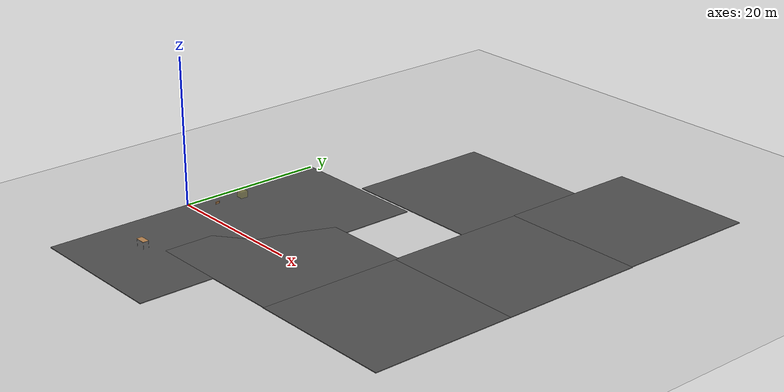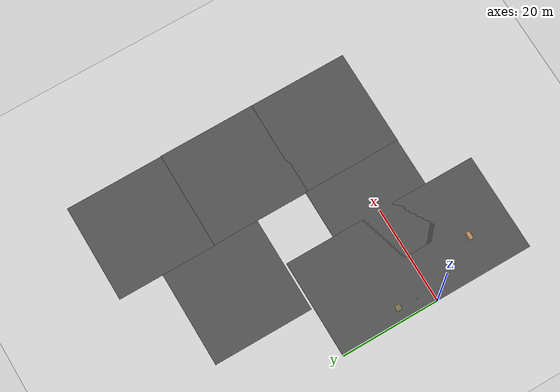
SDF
<sdf version="1.7">
 <world name="default">
  <model name="ground_plane">
   <static>1</static>
   <link name="link">
    <collision name="collision">
     <geometry><plane><normal>0 0 1</normal><size>100 100</size></plane></geometry>
     <surface><friction><ode><mu>100</mu><mu2>50</mu2></ode></friction></surface>
    </collision>
    <visual name="visual">
     <cast_shadows>0</cast_shadows>
     <geometry><plane><normal>0 0 1</normal><size>100 100</size></plane></geometry>
     <material>
      <script><uri>file://media/materials/scripts/gazebo.material</uri><name>Gazebo/Grey</name></script>
     </material>
    </visual>
   </link>
  </model>
  <model name="asphalt_plane">
   <static>1</static>
   <link name="link">
    <collision name="collision"><geometry><box><size>20 20 0.1</size></box></geometry></collision>
    <visual name="visual">
     <cast_shadows>0</cast_shadows>
     <geometry><box><size>20 20 0.1</size></box></geometry>
     <material>
      <script>
       <uri>model://asphalt_plane/materials/scripts</uri>
       <uri>model://asphalt_plane/materials/textures</uri>
       <name>vrc/asphalt</name>
      </script>
     </material>
    </visual>
   </link>
   <pose>10 10 0 0 -0 0</pose>
  </model>
  <model name="asphalt_plane_clone_0">
   <static>1</static>
   <link name="link">
    <collision name="collision"><geometry><box><size>20 20 0.1</size></box></geometry></collision>
    <visual name="visual">
     <cast_shadows>0</cast_shadows>
     <geometry><box><size>20 20 0.1</size></box></geometry>
     <material>
      <script>
       <uri>model://asphalt_plane/materials/scripts</uri>
       <uri>model://asphalt_plane/materials/textures</uri>
       <name>vrc/asphalt</name>
      </script>
     </material>
    </visual>
   </link>
   <pose>19.9376 0.040313 0 0 -0 0</pose>
  </model>
  <model name="asphalt_plane_clone_0_clone">
   <static>1</static>
   <link name="link">
    <collision name="collision"><geometry><box><size>20 20 0.1</size></box></geometry></collision>
    <visual name="visual">
     <cast_shadows>0</cast_shadows>
     <geometry><box><size>20 20 0.1</size></box></geometry>
     <material>
      <script>
       <uri>model://asphalt_plane/materials/scripts</uri>
       <uri>model://asphalt_plane/materials/textures</uri>
       <name>vrc/asphalt</name>
      </script>
     </material>
    </visual>
   </link>
   <pose>39.77 -0.016026 0 0 -0 0</pose>
  </model>
  <model name="asphalt_plane_clone_0_clone_0">
   <static>1</static>
   <link name="link">
    <collision name="collision"><geometry><box><size>20 20 0.1</size></box></geometry></collision>
    <visual name="visual">
     <cast_shadows>0</cast_shadows>
     <geometry><box><size>20 20 0.1</size></box></geometry>
     <material>
      <script>
       <uri>model://asphalt_plane/materials/scripts</uri>
       <uri>model://asphalt_plane/materials/textures</uri>
       <name>vrc/asphalt</name>
      </script>
     </material>
    </visual>
   </link>
   <pose>39.7819 19.5413 0 0 -0 0</pose>
  </model>
  <model name="asphalt_plane_clone_0_clone_1">
   <static>1</static>
   <link name="link">
    <collision name="collision"><geometry><box><size>20 20 0.1</size></box></geometry></collision>
    <visual name="visual">
     <cast_shadows>0</cast_shadows>
     <geometry><box><size>20 20 0.1</size></box></geometry>
     <material>
      <script>
       <uri>model://asphalt_plane/materials/scripts</uri>
       <uri>model://asphalt_plane/materials/textures</uri>
       <name>vrc/asphalt</name>
      </script>
     </material>
    </visual>
   </link>
   <pose>39.6832 39.3938 0 0 -0 0</pose>
  </model>
  <model name="asphalt_plane_clone_0_clone_2">
   <static>1</static>
   <link name="link">
    <collision name="collision"><geometry><box><size>20 20 0.1</size></box></geometry></collision>
    <visual name="visual">
     <cast_shadows>0</cast_shadows>
     <geometry><box><size>20 20 0.1</size></box></geometry>
     <material>
      <script>
       <uri>model://asphalt_plane/materials/scripts</uri>
       <uri>model://asphalt_plane/materials/textures</uri>
       <name>vrc/asphalt</name>
      </script>
     </material>
    </visual>
   </link>
   <pose>20.3411 30.4402 0 0 -0 0</pose>
  </model>
  <model name="asphalt_plane_clone_clone_0">
   <static>1</static>
   <link name="link">
    <collision name="collision"><geometry><box><size>20 20 0.1</size></box></geometry></collision>
    <visual name="visual">
     <cast_shadows>0</cast_shadows>
     <geometry><box><size>20 20 0.1</size></box></geometry>
     <material>
      <script>
       <uri>model://asphalt_plane/materials/scripts</uri>
       <uri>model://asphalt_plane/materials/textures</uri>
       <name>vrc/asphalt</name>
      </script>
     </material>
    </visual>
   </link>
   <pose>10 -10 0 0 -0 0</pose>
  </model>
  <model name="marble_1_5cm">
   <link name="link">
    <pose>0 0 0.0075 0 -0 0</pose>
    <inertial>
     <mass>0.0062</mass>
     <inertia>
      <ixx>1.395e-07</ixx>
      <ixy>0</ixy>
      <ixz>0</ixz>
      <iyy>1.395e-07</iyy>
      <iyz>0</iyz>
      <izz>1.395e-07</izz>
     </inertia>
    </inertial>
    <collision name="collision">
     <geometry><sphere><radius>0.0075</radius></sphere></geometry>
     <surface>
      <contact>
       <poissons_ratio>0.22</poissons_ratio>
       <elastic_modulus>5.1e+10</elastic_modulus>
       <ode><kp>100000</kp><kd>100</kd><max_vel>100</max_vel><min_depth>0.001</min_depth></ode>
      </contact>
      <friction>
       <torsional>
        <coefficient>1</coefficient>
        <use_patch_radius>0</use_patch_radius>
        <surface_radius>0.01</surface_radius>
       </torsional>
      </friction>
     </surface>
    </collision>
    <visual name="visual">
     <geometry><sphere><radius>0.0075</radius></sphere></geometry>
     <material>
      <script><uri>file://media/materials/scripts/gazebo.material</uri><name>Gazebo/Blue</name></script>
     </material>
    </visual>
    <velocity_decay><linear>0</linear><angular>0.005</angular></velocity_decay>
   </link>
   <pose>6.07274 -9.18428 0 0 -0 0</pose>
  </model>
  <model name="RegionEventBox">
   <static>1</static>
   <pose>2.43258 6.8815 0 0 -0 0</pose>
   <link name="link">
    <visual name="visual">
     <transparency>0.75</transparency>
     <geometry><box><size>1 1 1.75</size></box></geometry>
     <material>
      <script><uri>file://media/materials/scripts/gazebo.material</uri><name>Gazebo/Yellow</name></script>
     </material>
    </visual>
   </link>
   <plugin name="region_event_box" filename="libRegionEventBoxPlugin.so">
    <event><name>model_in_region_event_box</name><type>inclusion</type><active>1</active></event>
   </plugin>
  </model>
  <model name="table">
   <static>1</static>
   <link name="link">
    <collision name="surface">
     <pose>0 0 1 0 -0 0</pose>
     <geometry><box><size>1.5 0.8 0.03</size></box></geometry>
     <surface><friction><ode><mu>0.6</mu><mu2>0.6</mu2></ode></friction></surface>
    </collision>
    <visual name="visual1">
     <pose>0 0 1 0 -0 0</pose>
     <geometry><box><size>1.5 0.8 0.03</size></box></geometry>
     <material>
      <script><uri>file://media/materials/scripts/gazebo.material</uri><name>Gazebo/Wood</name></script>
     </material>
    </visual>
    <collision name="front_left_leg">
     <pose>0.68 0.38 0.5 0 -0 0</pose>
     <geometry><cylinder><radius>0.02</radius><length>1</length></cylinder></geometry>
    </collision>
    <visual name="front_left_leg">
     <pose>0.68 0.38 0.5 0 -0 0</pose>
     <geometry><cylinder><radius>0.02</radius><length>1</length></cylinder></geometry>
     <material>
      <script><uri>file://media/materials/scripts/gazebo.material</uri><name>Gazebo/Grey</name></script>
     </material>
    </visual>
    <collision name="front_right_leg">
     <pose>0.68 -0.38 0.5 0 -0 0</pose>
     <geometry><cylinder><radius>0.02</radius><length>1</length></cylinder></geometry>
    </collision>
    <visual name="front_right_leg">
     <pose>0.68 -0.38 0.5 0 -0 0</pose>
     <geometry><cylinder><radius>0.02</radius><length>1</length></cylinder></geometry>
     <material>
      <script><uri>file://media/materials/scripts/gazebo.material</uri><name>Gazebo/Grey</name></script>
     </material>
    </visual>
    <collision name="back_right_leg">
     <pose>-0.68 -0.38 0.5 0 -0 0</pose>
     <geometry><cylinder><radius>0.02</radius><length>1</length></cylinder></geometry>
    </collision>
    <visual name="back_right_leg">
     <pose>-0.68 -0.38 0.5 0 -0 0</pose>
     <geometry><cylinder><radius>0.02</radius><length>1</length></cylinder></geometry>
     <material>
      <script><uri>file://media/materials/scripts/gazebo.material</uri><name>Gazebo/Grey</name></script>
     </material>
    </visual>
    <collision name="back_left_leg">
     <pose>-0.68 0.38 0.5 0 -0 0</pose>
     <geometry><cylinder><radius>0.02</radius><length>1</length></cylinder></geometry>
    </collision>
    <visual name="back_left_leg">
     <pose>-0.68 0.38 0.5 0 -0 0</pose>
     <geometry><cylinder><radius>0.02</radius><length>1</length></cylinder></geometry>
     <material>
      <script><uri>file://media/materials/scripts/gazebo.material</uri><name>Gazebo/Grey</name></script>
     </material>
    </visual>
   </link>
   <pose>7.23213 -11.3963 0 0 -0 0</pose>
  </model>
  <model name="wooden_case_metal_peg">
   <frame name="wooden_case::__model__" attached_to="wooden_case::base">
    <pose relative_to="__model__">0 0 0 0 -0 0</pose>
   </frame>
   <link name="wooden_case::base">
    <pose relative_to="wooden_case::__model__">0 0 0.024 0 -0 0</pose>
    <inertial>
     <pose>-0.022184 0 0.171592 0 -0 0</pose>
     <mass>3.96264</mass>
     <inertia>
      <ixx>0.213536</ixx>
      <ixy>0</ixy>
      <ixz>0.000779377</ixz>
      <iyy>0.0708943</iyy>
      <iyz>0</iyz>
      <izz>0.154604</izz>
     </inertia>
    </inertial>
    <collision name="collision_back">
     <pose>-0.053975 0 0.1778 0 -0 0</pose>
     <geometry><box><size>0.01905 0.5461 0.3175</size></box></geometry>
     <surface>
      <contact>
       <poissons_ratio>0.347</poissons_ratio>
       <elastic_modulus>8.8e+09</elastic_modulus>
       <ode><kp>100000</kp><kd>100</kd><max_vel>100</max_vel><min_depth>0.001</min_depth></ode>
      </contact>
      <friction>
       <torsional>
        <coefficient>1</coefficient>
        <use_patch_radius>0</use_patch_radius>
        <surface_radius>0.01</surface_radius>
       </torsional>
      </friction>
     </surface>
    </collision>
    <visual name="visual_back">
     <pose>-0.053975 0 0.1778 0 -0 0</pose>
     <geometry><box><size>0.01905 0.5461 0.3175</size></box></geometry>
     <material>
      <script><uri>file://media/materials/scripts/gazebo.material</uri><name>Gazebo/Wood</name></script>
     </material>
    </visual>
    <collision name="collision_bottom">
     <pose>0 0 0.009525 0 -0 0</pose>
     <geometry><box><size>0.127 0.5842 0.01905</size></box></geometry>
     <surface>
      <contact>
       <poissons_ratio>0.347</poissons_ratio>
       <elastic_modulus>8.8e+09</elastic_modulus>
       <ode><kp>100000</kp><kd>100</kd><max_vel>100</max_vel><min_depth>0.001</min_depth></ode>
      </contact>
      <friction>
       <torsional>
        <coefficient>1</coefficient>
        <use_patch_radius>0</use_patch_radius>
        <surface_radius>0.01</surface_radius>
       </torsional>
      </friction>
     </surface>
    </collision>
    <visual name="visual_bottom">
     <pose>0 0 0.009525 0 -0 0</pose>
     <geometry><box><size>0.127 0.5842 0.01905</size></box></geometry>
     <material>
      <script><uri>file://media/materials/scripts/gazebo.material</uri><name>Gazebo/Wood</name></script>
     </material>
    </visual>
    <collision name="collision_top">
     <pose>0 0 0.346075 0 -0 0</pose>
     <geometry><box><size>0.127 0.5842 0.01905</size></box></geometry>
     <surface>
      <contact>
       <poissons_ratio>0.347</poissons_ratio>
       <elastic_modulus>8.8e+09</elastic_modulus>
       <ode><kp>100000</kp><kd>100</kd><max_vel>100</max_vel><min_depth>0.001</min_depth></ode>
      </contact>
      <friction>
       <torsional>
        <coefficient>1</coefficient>
        <use_patch_radius>0</use_patch_radius>
        <surface_radius>0.01</surface_radius>
       </torsional>
      </friction>
     </surface>
    </collision>
    <visual name="visual_top">
     <pose>0 0 0.346075 0 -0 0</pose>
     <geometry><box><size>0.127 0.5842 0.01905</size></box></geometry>
     <material>
      <script><uri>file://media/materials/scripts/gazebo.material</uri><name>Gazebo/Wood</name></script>
     </material>
    </visual>
    <collision name="collision_left">
     <pose>0 -0.282575 0.1778 0 -0 0</pose>
     <geometry><box><size>0.127 0.01905 0.3175</size></box></geometry>
     <surface>
      <contact>
       <poissons_ratio>0.347</poissons_ratio>
       <elastic_modulus>8.8e+09</elastic_modulus>
       <ode><kp>100000</kp><kd>100</kd><max_vel>100</max_vel><min_depth>0.001</min_depth></ode>
      </contact>
      <friction>
       <torsional>
        <coefficient>1</coefficient>
        <use_patch_radius>0</use_patch_radius>
        <surface_radius>0.01</surface_radius>
       </torsional>
      </friction>
     </surface>
    </collision>
    <visual name="visual_left">
     <pose>0 -0.282575 0.1778 0 -0 0</pose>
     <geometry><box><size>0.127 0.01905 0.3175</size></box></geometry>
     <material>
      <script><uri>file://media/materials/scripts/gazebo.material</uri><name>Gazebo/Wood</name></script>
     </material>
    </visual>
    <collision name="collision_right">
     <pose>0 0.282575 0.1778 0 -0 0</pose>
     <geometry><box><size>0.127 0.01905 0.3175</size></box></geometry>
     <surface>
      <contact>
       <poissons_ratio>0.347</poissons_ratio>
       <elastic_modulus>8.8e+09</elastic_modulus>
       <ode><kp>100000</kp><kd>100</kd><max_vel>100</max_vel><min_depth>0.001</min_depth></ode>
      </contact>
      <friction>
       <torsional>
        <coefficient>1</coefficient>
        <use_patch_radius>0</use_patch_radius>
        <surface_radius>0.01</surface_radius>
       </torsional>
      </friction>
     </surface>
    </collision>
    <visual name="visual_right">
     <pose>0 0.282575 0.1778 0 -0 0</pose>
     <geometry><box><size>0.127 0.01905 0.3175</size></box></geometry>
     <material>
      <script><uri>file://media/materials/scripts/gazebo.material</uri><name>Gazebo/Wood</name></script>
     </material>
    </visual>
    <collision name="collision_block_left">
     <pose>0.0095 -0.2151 -0.012 0 -0 0</pose>
     <geometry><box><size>0.108 0.05 0.024</size></box></geometry>
     <surface>
      <contact>
       <poissons_ratio>0.347</poissons_ratio>
       <elastic_modulus>8.8e+09</elastic_modulus>
       <ode><kp>100000</kp><kd>100</kd><max_vel>100</max_vel><min_depth>0.001</min_depth></ode>
      </contact>
      <friction>
       <torsional>
        <coefficient>1</coefficient>
        <use_patch_radius>0</use_patch_radius>
        <surface_radius>0.01</surface_radius>
       </torsional>
      </friction>
     </surface>
    </collision>
    <visual name="visual_block_left">
     <pose>0.0095 -0.2151 -0.012 0 -0 0</pose>
     <geometry><box><size>0.108 0.05 0.024</size></box></geometry>
     <material>
      <script><uri>file://media/materials/scripts/gazebo.material</uri><name>Gazebo/Wood</name></script>
     </material>
    </visual>
    <collision name="collision_block_right">
     <pose>0.0095 0.2151 -0.012 0 -0 0</pose>
     <geometry><box><size>0.108 0.05 0.024</size></box></geometry>
     <surface>
      <contact>
       <poissons_ratio>0.347</poissons_ratio>
       <elastic_modulus>8.8e+09</elastic_modulus>
       <ode><kp>100000</kp><kd>100</kd><max_vel>100</max_vel><min_depth>0.001</min_depth></ode>
      </contact>
      <friction>
       <torsional>
        <coefficient>1</coefficient>
        <use_patch_radius>0</use_patch_radius>
        <surface_radius>0.01</surface_radius>
       </torsional>
      </friction>
     </surface>
    </collision>
    <visual name="visual_block_right">
     <pose>0.0095 0.2151 -0.012 0 -0 0</pose>
     <geometry><box><size>0.108 0.05 0.024</size></box></geometry>
     <material>
      <script><uri>file://media/materials/scripts/gazebo.material</uri><name>Gazebo/Wood</name></script>
     </material>
    </visual>
   </link>
   <link name="wooden_case::lid">
    <pose relative_to="wooden_case::__model__">0.243775 0 0.009525 0 -0 0</pose>
    <inertial>
     <mass>1.97874</mass>
     <inertia>
      <ixx>0.0563367</ixx>
      <ixy>0</ixy>
      <ixz>0</ixz>
      <iyy>0.020911</iyy>
      <iyz>0</iyz>
      <izz>0.0771281</izz>
     </inertia>
    </inertial>
    <collision name="collision">
     <geometry><box><size>0.3556 0.5842 0.01905</size></box></geometry>
     <surface>
      <contact>
       <poissons_ratio>0.347</poissons_ratio>
       <elastic_modulus>8.8e+09</elastic_modulus>
       <ode><kp>100000</kp><kd>100</kd><max_vel>100</max_vel><min_depth>0.001</min_depth></ode>
      </contact>
      <friction>
       <torsional>
        <coefficient>1</coefficient>
        <use_patch_radius>0</use_patch_radius>
        <surface_radius>0.01</surface_radius>
       </torsional>
      </friction>
     </surface>
    </collision>
    <visual name="visual">
     <geometry><box><size>0.3556 0.5842 0.01905</size></box></geometry>
     <material>
      <script><uri>file://media/materials/scripts/gazebo.material</uri><name>Gazebo/Wood</name></script>
     </material>
    </visual>
    <visual name="tee_nut_1">
     <pose>0.122 -0.216 0 0 -0 0</pose>
     <geometry><cylinder><radius>0.00635</radius><length>0.0192405</length></cylinder></geometry>
     <material>
      <script><uri>file://media/materials/scripts/gazebo.material</uri><name>Gazebo/Grey</name></script>
     </material>
    </visual>
    <visual name="tee_nut_2">
     <pose>0.122 -0.088 0 0 -0 0</pose>
     <geometry><cylinder><radius>0.00635</radius><length>0.0192405</length></cylinder></geometry>
     <material>
      <script><uri>file://media/materials/scripts/gazebo.material</uri><name>Gazebo/Grey</name></script>
     </material>
    </visual>
    <visual name="tee_nut_3">
     <pose>0.122 0.088 0 0 -0 0</pose>
     <geometry><cylinder><radius>0.00635</radius><length>0.0192405</length></cylinder></geometry>
     <material>
      <script><uri>file://media/materials/scripts/gazebo.material</uri><name>Gazebo/Grey</name></script>
     </material>
    </visual>
    <visual name="tee_nut_4">
     <pose>0.122 0.216 0 0 -0 0</pose>
     <geometry><cylinder><radius>0.00635</radius><length>0.0192405</length></cylinder></geometry>
     <material>
      <script><uri>file://media/materials/scripts/gazebo.material</uri><name>Gazebo/Grey</name></script>
     </material>
    </visual>
   </link>
   <joint name="wooden_case::lid_hinge" type="revolute">
    <pose>-0.1778 0 0.01905 0 -0 0</pose>
    <parent>wooden_case::base</parent>
    <child>wooden_case::lid</child>
    <axis>
     <xyz>0 1 0</xyz>
     <limit><upper>0.523599</upper><lower>-1.5708</lower></limit>
     <dynamics><spring_reference>0</spring_reference><spring_stiffness>0</spring_stiffness></dynamics>
    </axis>
   </joint>
   <frame name="peg::__model__" attached_to="peg::link">
    <pose relative_to="__model__">0.365774 0.216 0.01905 0 -0 0</pose>
   </frame>
   <link name="peg::link">
    <pose relative_to="peg::__model__">0 0 0.031 0 -0 0</pose>
    <inertial>
     <mass>0.0121</mass>
     <inertia>
      <ixx>3.90898e-06</ixx>
      <ixy>0</ixy>
      <ixz>0</ixz>
      <iyy>3.90898e-06</iyy>
      <iyz>0</iyz>
      <izz>6.58845e-08</izz>
     </inertia>
    </inertial>
    <collision name="collision">
     <geometry><cylinder><radius>0.0033</radius><length>0.062</length></cylinder></geometry>
     <surface>
      <contact>
       <poissons_ratio>0.305</poissons_ratio>
       <elastic_modulus>2e+11</elastic_modulus>
       <ode><kp>100000</kp><kd>100</kd><max_vel>100</max_vel><min_depth>0.001</min_depth></ode>
      </contact>
      <friction>
       <torsional>
        <coefficient>1</coefficient>
        <use_patch_radius>0</use_patch_radius>
        <surface_radius>0.01</surface_radius>
       </torsional>
      </friction>
     </surface>
    </collision>
    <visual name="visual">
     <geometry><cylinder><radius>0.0033</radius><length>0.062</length></cylinder></geometry>
     <material>
      <script><uri>file://media/materials/scripts/gazebo.material</uri><name>Gazebo/Grey</name></script>
     </material>
    </visual>
   </link>
   <joint name="case_peg" type="revolute">
    <child>peg::link</child>
    <parent>wooden_case::lid</parent>
    <axis>
     <xyz>0 0 1</xyz>
     <limit><upper>0</upper><lower>0</lower></limit>
     <dynamics><spring_reference>0</spring_reference><spring_stiffness>0</spring_stiffness></dynamics>
    </axis>
   </joint>
   <pose>2.28187 3.08047 0 0 -0 0</pose>
  </model>
 </world>
</sdf>
